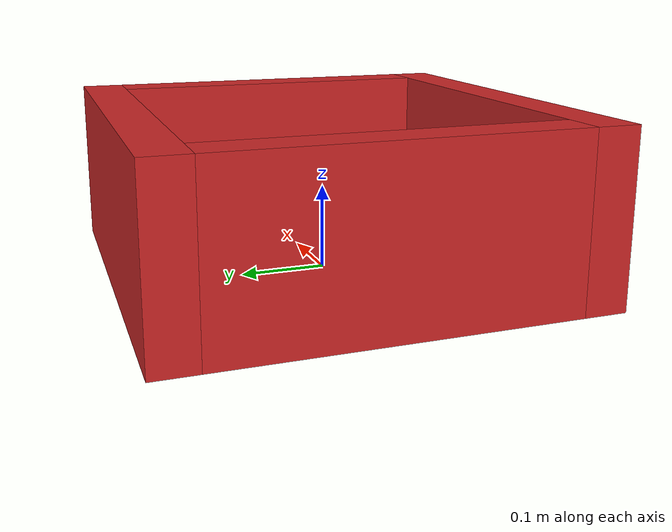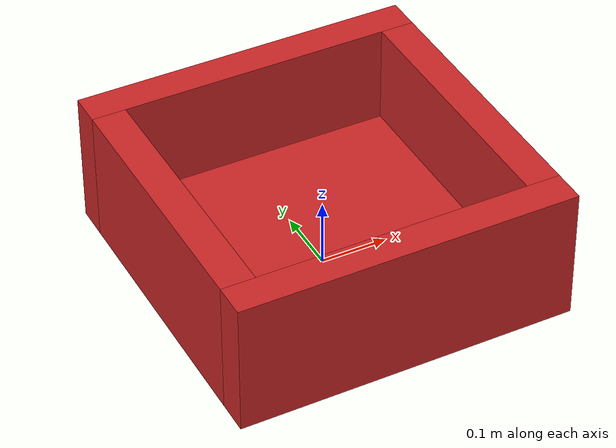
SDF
<?xml version='1.0'?>
<sdf version='1.6'>
  <model name='bin'>
    <link name="bottom">
      <pose>0 0 0.025 0 0 0</pose>
      <inertial>
        <mass>0.05</mass>
        <inertia>
          <ixx>0.001</ixx>
          <iyy>0.001</iyy>
          <izz>0.001</izz>
        </inertia>
      </inertial>
      <visual name='visual_bottom'>
        <geometry>
          <box>
            <size>0.4 0.4 0.05</size>
          </box>
        </geometry>
        <material>
          <script>
            <uri>file://media/materials/scripts/gazebo.material</uri>
            <name>Gazebo/Red</name>
          </script>
        </material>
      </visual>
      <collision name='collision_bottom'>
        <geometry>
          <box>
            <size>0.4 0.4 0.05</size>
          </box>
        </geometry>
        <surface>
          <friction>
            <ode>
              <mu>10</mu>
              <mu2>10</mu2>
            </ode>
          </friction>
        </surface>
      </collision>
    </link>

    <link name="left">
      <pose>-0.225 0 0.1 0 0 0</pose>
      <inertial>
        <mass>0.05</mass>
        <inertia>
          <ixx>0.001</ixx>
          <iyy>0.001</iyy>
          <izz>0.001</izz>
        </inertia>
      </inertial>
      <visual name='visual_left'>
        <geometry>
          <box>
            <size>0.05 0.4 0.2</size>
          </box>
        </geometry>
        <material>
          <script>
            <uri>file://media/materials/scripts/gazebo.material</uri>
            <name>Gazebo/Red</name>
          </script>
        </material>
      </visual>
      <collision name='collision_left'>
        <geometry>
          <box>
            <size>0.05 0.4 0.2</size>
          </box>
        </geometry>
        <surface>
          <friction>
            <ode>
              <mu>10</mu>
              <mu2>10</mu2>
            </ode>
          </friction>
        </surface>
      </collision>
    </link>

    <link name="right">
      <pose>0.225 0 0.1 0 0 0</pose>
      <inertial>
        <mass>0.05</mass>
        <inertia>
          <ixx>0.001</ixx>
          <iyy>0.001</iyy>
          <izz>0.001</izz>
        </inertia>
      </inertial>
      <visual name='visual_right'>
        <geometry>
          <box>
            <size>0.05 0.4 0.2</size>
          </box>
        </geometry>
        <material>
          <script>
            <uri>file://media/materials/scripts/gazebo.material</uri>
            <name>Gazebo/Red</name>
          </script>
        </material>
      </visual>
      <collision name='collision_right'>
        <geometry>
          <box>
            <size>0.05 0.4 0.2</size>
          </box>
        </geometry>
        <surface>
          <friction>
            <ode>
              <mu>10</mu>
              <mu2>10</mu2>
            </ode>
          </friction>
        </surface>
      </collision>
    </link>

    <link name="back">
      <pose>0 0.225 0.1 0 0 0</pose>
      <inertial>
        <mass>0.05</mass>
        <inertia>
          <ixx>0.001</ixx>
          <iyy>0.001</iyy>
          <izz>0.001</izz>
        </inertia>
      </inertial>
      <visual name='visual_back'>
        <geometry>
          <box>
            <size>0.5 0.05 0.2</size>
          </box>
        </geometry>
        <material>
          <script>
            <uri>file://media/materials/scripts/gazebo.material</uri>
            <name>Gazebo/Red</name>
          </script>
        </material>
      </visual>
      <collision name='collision_back'>
        <geometry>
          <box>
            <size>0.5 0.05 0.2</size>
          </box>
        </geometry>
        <surface>
          <friction>
            <ode>
              <mu>10</mu>
              <mu2>10</mu2>
            </ode>
          </friction>
        </surface>
      </collision>
    </link>

    <link name="front">
      <pose>0 -0.225 0.1 0 0 0</pose>
      <inertial>
        <mass>0.05</mass>
        <inertia>
          <ixx>0.001</ixx>
          <iyy>0.001</iyy>
          <izz>0.001</izz>
        </inertia>
      </inertial>
      <visual name='visual_front'>
        <geometry>
          <box>
            <size>0.5 0.05 0.2</size>
          </box>
        </geometry>
        <material>
          <script>
            <uri>file://media/materials/scripts/gazebo.material</uri>
            <name>Gazebo/Red</name>
          </script>
        </material>
      </visual>
      <collision name='collision_front'>
        <geometry>
          <box>
            <size>0.5 0.05 0.2</size>
          </box>
        </geometry>
        <surface>
          <friction>
            <ode>
              <mu>10</mu>
              <mu2>10</mu2>
            </ode>
          </friction>
        </surface>
      </collision>
    </link>

    <joint name="left_joint" type="fixed">
      <parent>bottom</parent>
      <child>left</child>
    </joint>

    <joint name="right_joint" type="fixed">
      <parent>bottom</parent>
      <child>right</child>
    </joint>

    <joint name="back_joint" type="fixed">
      <parent>bottom</parent>
      <child>back</child>
    </joint>

    <joint name="front_joint" type="fixed">
      <parent>bottom</parent>
      <child>front</child>
    </joint>
    <static>1</static>

  </model>
</sdf>
